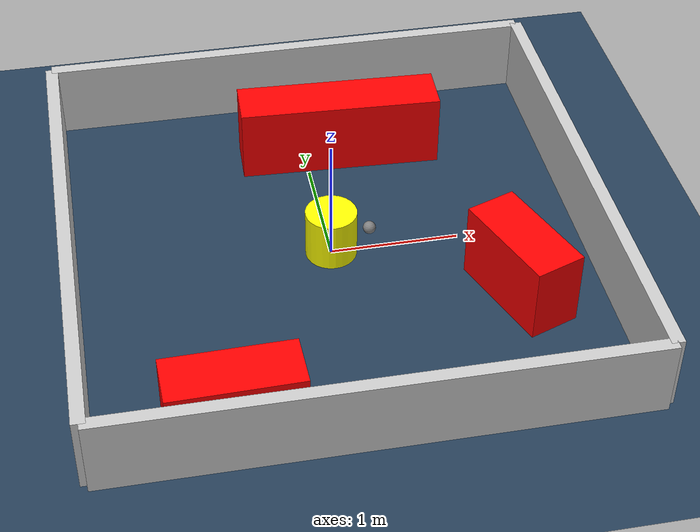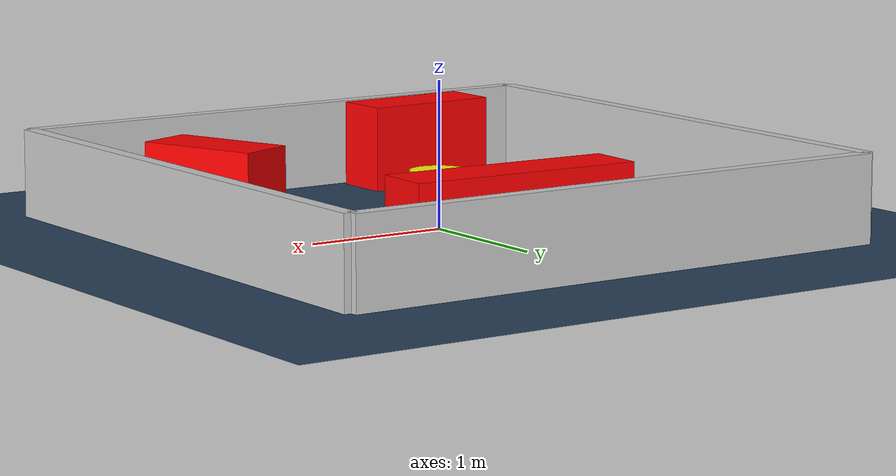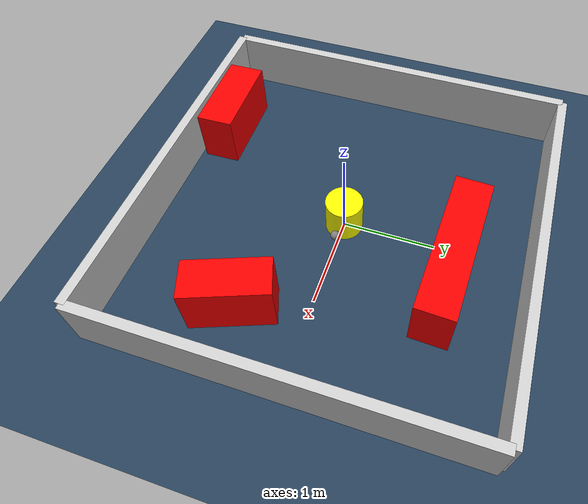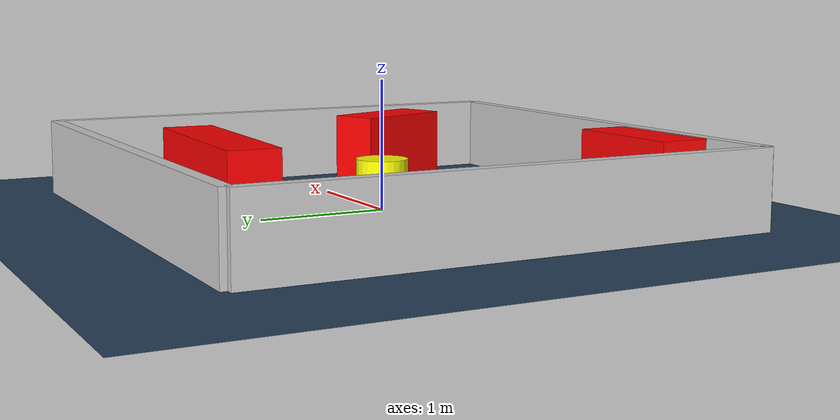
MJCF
<?xml version="1.0" ?>
<mujoco model="generated_environment">
  <option timestep="0.01" integrator="RK4" cone="elliptic"/>
  <default>
    <geom density="1"/>
  </default>
  <asset>
    <texture builtin="gradient" height="3072" rgb1="0.3 0.5 0.7" rgb2="0 0 0" type="skybox" width="512"/>
    <texture builtin="checker" height="300" mark="edge" markrgb="0.8 0.8 0.8" name="groundplane" rgb1="0.2 0.3 0.4" rgb2="0.1 0.2 0.3" type="2d" width="300"/>
    <material name="groundplane" reflectance="0.2" texrepeat="5 5" texture="groundplane" texuniform="true"/>
    <material name="robot" rgba="0.0 1.0 0.0 1"/>
  </asset>
  <worldbody>
    <light dir="0 0 -1" directional="true" pos="0 0 1.5"/>
    <geom condim="4" friction="1.0 0.005 0.001" material="groundplane" name="floor" size="0 0 0.05" type="plane"/>
    <body name="walls">
      <geom name="wall_1" condim="4" pos="-2.0 0.0 0.3" rgba="0.800000011920929 0.800000011920929 0.800000011920929 1.0" size="0.05 2.0 0.3" type="box"/>
      <geom name="wall_2" condim="4" pos="2.0 0.0 0.3" rgba="0.800000011920929 0.800000011920929 0.800000011920929 1.0" size="0.05 2.0 0.3" type="box"/>
      <geom name="wall_3" condim="4" pos="0.0 -2.0 0.3" rgba="0.800000011920929 0.800000011920929 0.800000011920929 1.0" size="2.0 0.05 0.3" type="box"/>
      <geom name="wall_4" condim="4" pos="0.0 2.0 0.3" rgba="0.800000011920929 0.800000011920929 0.800000011920929 1.0" size="2.0 0.05 0.3" type="box"/>
    </body>
    <body name="robot">
      <joint name="joint_x" type="slide" pos="0 0 0" axis="1 0 0"/>
      <joint name="joint_y" type="slide" pos="0 0 0" axis="0 1 0"/>
      <geom name="robot" type="sphere" pos="0.3 0.0 0.2" size="0.05" mass="5." friction="1.0 0.005 0.0001" condim="4" rgba="0.5 0.5 0.5 1.0"/>
      <site name="sensor_ball"/>
    </body>
    <body name="obstacle_movable_1">
      <geom name="obstacle_movable_1" condim="4" pos="0.0 0.0 0.2" euler="0 0 0.0" friction="1.0 0.005 0.001" rgba="1.0 1.0 0.0 1.0" size="0.2 0.2 0.0" type="cylinder" mass="0.1"/>
      <joint type="free"/>
    </body>
    <body name="obstacle_2_static">
      <geom name="obstacle_2_static" condim="4" pos="-0.9751075817650299 -1.7077579819908333 0.3" euler="0 0 181.29509366056956" friction="1.0 0.005 0.001" rgba="1 0 0 1" size="0.48219162474932786 0.2 0.3" type="box"/>
    </body>
    <body name="obstacle_3_static">
      <geom name="obstacle_3_static" condim="4" pos="1.3033297266998707 -0.7220616183032207 0.3" euler="0 0 110.53472285770468" friction="1.0 0.005 0.001" rgba="1 0 0 1" size="0.43481894142369526 0.2 0.3" type="box"/>
    </body>
    <body name="obstacle_4_static">
      <geom name="obstacle_4_static" condim="4" pos="0.2816471731133421 1.2125531884328569 0.3" euler="0 0 177.57517134474446" friction="1.0 0.005 0.001" rgba="1 0 0 1" size="0.8093042418407206 0.2 0.3" type="box"/>
    </body>
  </worldbody>
  <actuator>
    <motor name="actuator_x" joint="joint_x" gear="1" ctrlrange="-1 1"/>
    <motor name="actuator_y" joint="joint_y" gear="1" ctrlrange="-1 1"/>
  </actuator>
</mujoco>
